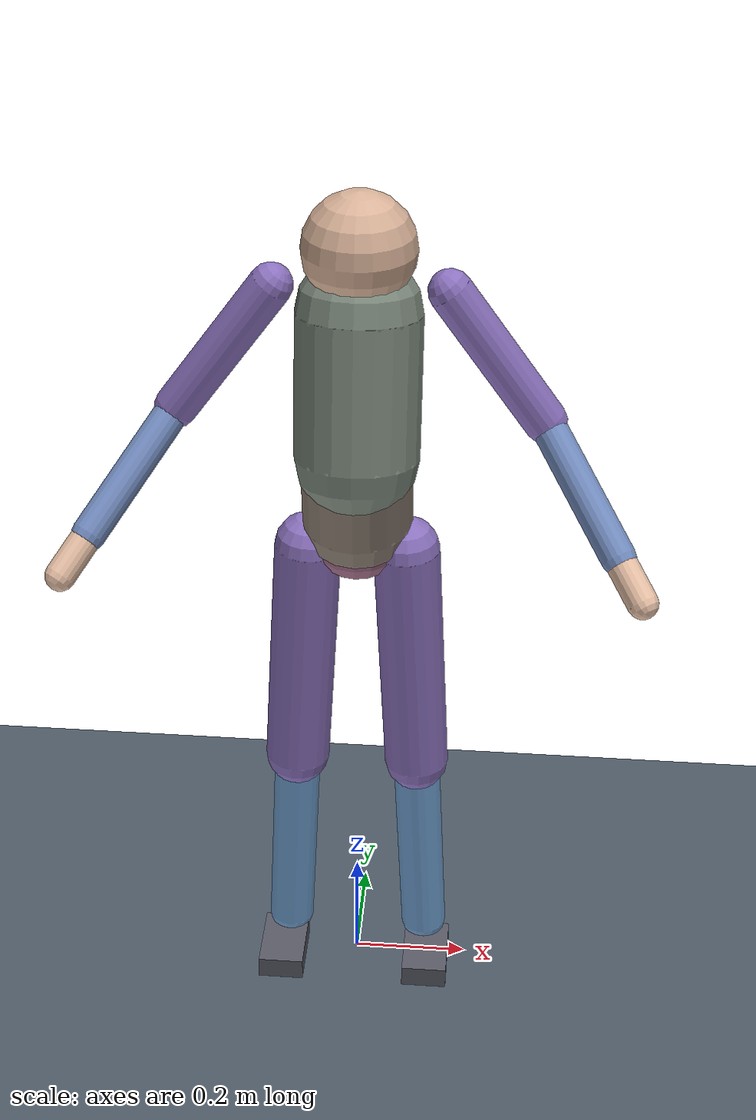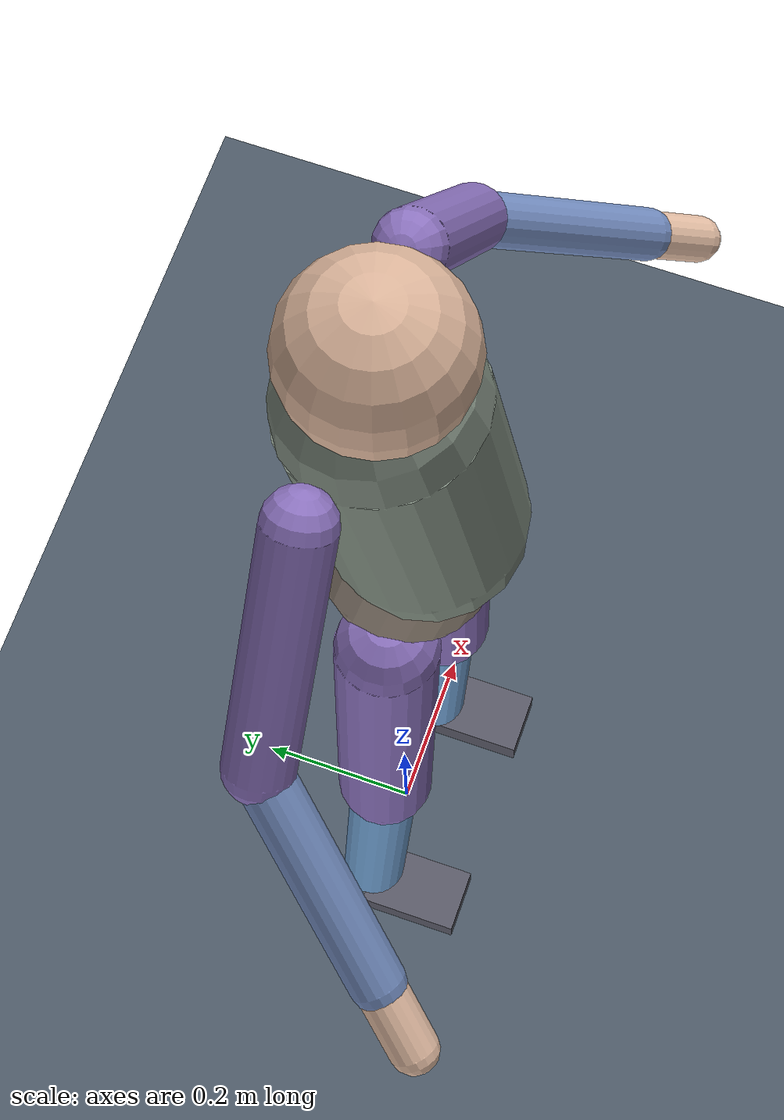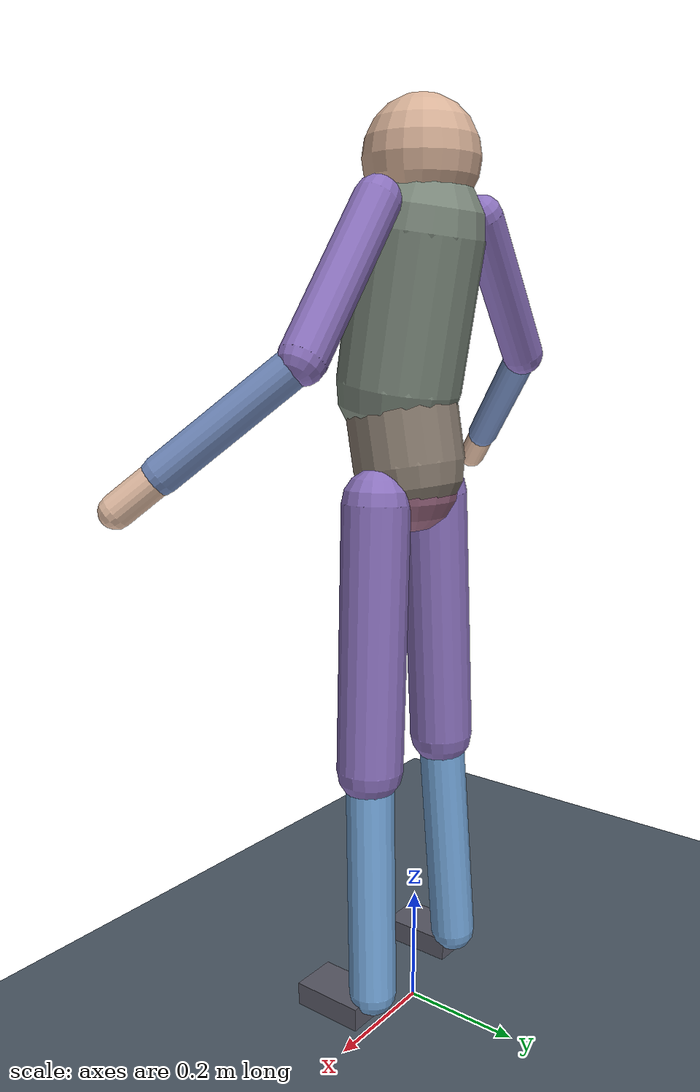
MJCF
<mujoco model="humanoid_alpha">
  <compiler angle="radian" coordinate="local" inertiafromgeom="true"/>
  <option timestep="0.002" gravity="0 0 -9.81" integrator="implicitfast"
          cone="elliptic" impratio="1"/>

  <default>
    <!-- solreflimit/solimplimit: stiff soft joint limits (ENGINEERING).
         Ball limited=true uses isotropic cone about rest (MuJoCo fact). -->
    <joint damping="0.08" armature="0.002"
           solreflimit="0.002 1" solimplimit="0.95 0.99 0.001" margin="0.02"/>
    <geom condim="3" friction="0.8 0.1 0.1"
          rgba="0.7 0.55 0.45 1" solref="0.02 1" solimp="0.9 0.95 0.001"/>
    <motor ctrllimited="true"/>
  </default>

  <asset>
    <texture name="grid" type="2d" builtin="checker" rgb1="0.2 0.3 0.4" rgb2="0.3 0.4 0.5"
             width="512" height="512"/>
    <material name="grid" texture="grid" texrepeat="4 4" reflectance="0.1"/>
  </asset>

  <worldbody>
    <geom name="floor" type="plane" size="5 5 0.1" rgba="0.3 0.35 0.4 1"
          friction="0.8 0.1 0.1"
          condim="3" material="grid"/>
    <light name="top" pos="0 0 3" dir="0 0 -1"/>

    <!-- PELVIS free root -->
    <body name="pelvis" pos="-0.00000000 -0.01795729 0.92590946">
      <freejoint name="root"/>
      <geom name="pelvis_geom" type="capsule" fromto="0 0 0 0.00000000 -0.00171871 0.02588642"
            size="0.08" density="4327.472052"
            rgba="0.6 0.4 0.5 1"/>
      <site name="pelvis_site" pos="0 0 0" size="0.02"/>

      <!-- TORSO LOWER (lumbar ball) -->
      <body name="torso_lower" pos="0.00000000 -0.00171871 0.02588642">
        <joint name="lumbar" type="ball" limited="true" range="0 0.6981317007977318" damping="0.08" armature="0.002"/>
        <geom name="torso_lower_geom" type="capsule" fromto="0 0 0 -0.00000000 -0.02211192 0.12414080"
              size="0.09" density="2247.388279"
              rgba="0.55 0.5 0.45 1"/>

        <!-- TORSO UPPER (thoracic ball); clavicles WELDED here -->
        <body name="torso_upper" pos="-0.00000000 -0.02211192 0.12414080">
          <joint name="thoracic" type="ball" limited="true" range="0 0.4363323129985824" damping="0.08" armature="0.002"/>
          <geom name="torso_upper_geom" type="capsule" fromto="0 0 0 0.00000000 0.03915559 0.23048341"
                size="0.1" density="2091.423647"
                rgba="0.5 0.55 0.5 1"/>

          <!-- HEAD (neck ball) -->
          <body name="head" pos="0.00000000 0.03915559 0.23048341">
            <joint name="neck" type="ball" limited="true" range="0 1.0471975511965976" damping="0.08" armature="0.002"/>
            <geom name="head_geom" type="sphere" pos="0.00000000 0.00051436 0.10423660"
                  size="0.09" density="1401.209880"
                  rgba="0.85 0.7 0.6 1"/>
          </body>

          <!-- LEFT ARM (shoulder at upperarm; clavicle welded) -->
          <body name="upperarm_l" pos="0.13750337 0.06080558 0.26143622">
            <joint name="shoulder_l" type="ball" limited="true" range="0 2.6179938779914944" damping="0.08" armature="0.002"/>
            <geom name="upperarm_l_geom" type="capsule" fromto="0 0 0 0.15628196 -0.00517103 -0.21397173"
                  size="0.035" density="1967.573737"
                  rgba="0.55 0.45 0.75 1"/>
            <body name="lowerarm_l" pos="0.15628196 -0.00517103 -0.21397173">
              <joint name="elbow_l" type="hinge" axis="-0.80688769 -0.05682603 -0.58796513"
                     range="0.0 2.6179938779914944"
                     limited="true" damping="0.08" armature="0.002"/>
              <geom name="lowerarm_l_geom" type="capsule" fromto="0 0 0 0.12206694 -0.15186871 -0.15283889"
                    size="0.028" density="1854.313102"
                    rgba="0.45 0.55 0.75 1"/>
              <body name="hand_l" pos="0.12206694 -0.15186871 -0.15283889">
                <joint name="wrist_l_flex" type="hinge" axis="-0.57300210 -0.77081943 0.27839905"
                       range="-1.2217304763960306 1.2217304763960306"
                       limited="true" damping="0.08" armature="0.002"/>
                <joint name="wrist_l_dev" type="hinge" axis="0.38407707 -0.55264789 -0.73963851"
                       range="-0.4363323129985824 0.6108652381980153"
                       limited="true" damping="0.08" armature="0.002"/>
                <geom name="hand_l_geom" type="capsule" fromto="0 0 0 0.03943413 -0.04906169 -0.04937510"
                      size="0.025" density="3153.534476"
                      rgba="0.9 0.75 0.65 1"/>
              </body>
            </body>
          </body>

          <!-- RIGHT ARM -->
          <body name="upperarm_r" pos="-0.13750440 0.06080503 0.26143265">
            <joint name="shoulder_r" type="ball" limited="true" range="0 2.6179938779914944" damping="0.08" armature="0.002"/>
            <geom name="upperarm_r_geom" type="capsule" fromto="0 0 0 -0.15628102 -0.00517101 -0.21397090"
                  size="0.035" density="1967.583726"
                  rgba="0.55 0.45 0.75 1"/>
            <body name="lowerarm_r" pos="-0.15628102 -0.00517101 -0.21397090">
              <joint name="elbow_r" type="hinge" axis="-0.80688691 0.05681980 0.58796686"
                     range="0.0 2.6179938779914944"
                     limited="true" damping="0.08" armature="0.002"/>
              <geom name="lowerarm_r_geom" type="capsule" fromto="0 0 0 -0.12206578 -0.15186719 -0.15283740"
                    size="0.028" density="1854.332747"
                    rgba="0.45 0.55 0.75 1"/>
              <body name="hand_r" pos="-0.12206578 -0.15186719 -0.15283740">
                <joint name="wrist_r_flex" type="hinge" axis="-0.57299960 0.77081847 -0.27840671"
                       range="-1.2217304763960306 1.2217304763960306"
                       limited="true" damping="0.08" armature="0.002"/>
                <joint name="wrist_r_dev" type="hinge" axis="0.38406542 0.55265504 0.73963916"
                       range="-0.4363323129985824 0.6108652381980153"
                       limited="true" damping="0.08" armature="0.002"/>
                <geom name="hand_r_geom" type="capsule" fromto="0 0 0 -0.03943414 -0.04906167 -0.04937510"
                      size="0.025" density="3153.534476"
                      rgba="0.9 0.75 0.65 1"/>
              </body>
            </body>
          </body>
        </body>
      </body>

      <!-- LEFT LEG -->
      <body name="thigh_l" pos="0.08068123 -0.00746380 -0.02524692">
        <joint name="hip_l" type="ball" limited="true" range="0 2.0943951023931953" damping="0.08" armature="0.002"/>
        <geom name="thigh_l_geom" type="capsule" fromto="0 0 0 0.02357826 0.00623232 -0.43413386"
              size="0.055" density="1727.367617"
              rgba="0.55 0.45 0.75 1"/>
        <body name="calf_l" pos="0.02357826 0.00623232 -0.43413386">
          <joint name="knee_l" type="hinge" axis="0.98767507 0.14625636 0.05574090"
                 range="-0.08726646259971647 2.443460952792061"
                 limited="true" damping="0.08" armature="0.002"/>
          <geom name="calf_l_geom" type="capsule" fromto="0 0 0 0.01905943 0.02069653 -0.39201690"
                size="0.04" density="1650.385099"
                rgba="0.45 0.65 0.85 1"/>
          <body name="foot_l" pos="0.01905943 0.02069653 -0.39201690">
            <joint name="ankle_l_dp" type="hinge" axis="0.98897082 0.14811058 0.00002446"
                   range="-0.3490658503988659 0.8726646259971648"
                   limited="true" damping="0.08" armature="0.002"/>
            <joint name="ankle_l_ie" type="hinge" axis="0.13235348 -0.88368259 -0.44898511"
                   range="-0.3490658503988659 0.3490658503988659"
                   limited="true" damping="0.08" armature="0.002"/>
            <geom name="foot_l_geom" type="box"
                  pos="0.00764331 -0.06284077 -0.03179681"
                  size="0.04000000 0.06284077 0.02000000"
                  density="2754.604533"
                  rgba="0.35 0.35 0.4 1"/>
          </body>
        </body>
      </body>

      <!-- RIGHT LEG -->
      <body name="thigh_r" pos="-0.08068430 -0.00743701 -0.02524543">
        <joint name="hip_r" type="ball" limited="true" range="0 2.0943951023931953" damping="0.08" armature="0.002"/>
        <geom name="thigh_r_geom" type="capsule" fromto="0 0 0 -0.02357824 0.00623231 -0.43413320"
              size="0.055" density="1727.370522"
              rgba="0.55 0.45 0.75 1"/>
        <body name="calf_r" pos="-0.02357824 0.00623231 -0.43413320">
          <joint name="knee_r" type="hinge" axis="0.98767519 -0.14625715 -0.05573623"
                 range="-0.08726646259971647 2.443460952792061"
                 limited="true" damping="0.08" armature="0.002"/>
          <geom name="calf_r_geom" type="capsule" fromto="0 0 0 -0.01905945 0.02069654 -0.39201725"
                size="0.04" density="1650.383470"
                rgba="0.45 0.65 0.85 1"/>
          <body name="foot_r" pos="-0.01905945 0.02069654 -0.39201725">
            <joint name="ankle_r_dp" type="hinge" axis="0.98897076 -0.14811094 -0.00003114"
                   range="-0.3490658503988659 0.8726646259971648"
                   limited="true" damping="0.08" armature="0.002"/>
            <joint name="ankle_r_ie" type="hinge" axis="-0.13235675 -0.88368199 -0.44898534"
                   range="-0.3490658503988659 0.3490658503988659"
                   limited="true" damping="0.08" armature="0.002"/>
            <geom name="foot_r_geom" type="box"
                  pos="-0.00764350 -0.06284065 -0.03179680"
                  size="0.04000000 0.06284065 0.02000000"
                  density="2754.608663"
                  rgba="0.35 0.35 0.4 1"/>
          </body>
        </body>
      </body>
    </body>
  </worldbody>

  <contact>
    <exclude body1="pelvis" body2="torso_upper"/>
    <exclude body1="torso_lower" body2="thigh_l"/>
    <exclude body1="torso_lower" body2="thigh_r"/>
    <exclude body1="pelvis" body2="upperarm_l"/>
    <exclude body1="pelvis" body2="upperarm_r"/>
    <exclude body1="torso_lower" body2="upperarm_l"/>
    <exclude body1="torso_lower" body2="upperarm_r"/>
    <exclude body1="torso_upper" body2="thigh_l"/>
    <exclude body1="torso_upper" body2="thigh_r"/>
    <exclude body1="head" body2="torso_lower"/>
    <exclude body1="head" body2="pelvis"/>
  </contact>

  <actuator>
    <motor name="lumbar_x_motor" joint="lumbar" gear="1 0 0" ctrllimited="true" ctrlrange="-35.0 35.0"/>
    <motor name="lumbar_y_motor" joint="lumbar" gear="0 1 0" ctrllimited="true" ctrlrange="-35.0 35.0"/>
    <motor name="lumbar_z_motor" joint="lumbar" gear="0 0 1" ctrllimited="true" ctrlrange="-35.0 35.0"/>
    <motor name="thoracic_x_motor" joint="thoracic" gear="1 0 0" ctrllimited="true" ctrlrange="-30.0 30.0"/>
    <motor name="thoracic_y_motor" joint="thoracic" gear="0 1 0" ctrllimited="true" ctrlrange="-30.0 30.0"/>
    <motor name="thoracic_z_motor" joint="thoracic" gear="0 0 1" ctrllimited="true" ctrlrange="-30.0 30.0"/>
    <motor name="neck_x_motor" joint="neck" gear="1 0 0" ctrllimited="true" ctrlrange="-20.0 20.0"/>
    <motor name="neck_y_motor" joint="neck" gear="0 1 0" ctrllimited="true" ctrlrange="-20.0 20.0"/>
    <motor name="neck_z_motor" joint="neck" gear="0 0 1" ctrllimited="true" ctrlrange="-20.0 20.0"/>
    <motor name="hip_l_x_motor" joint="hip_l" gear="1 0 0" ctrllimited="true" ctrlrange="-120.0 120.0"/>
    <motor name="hip_l_y_motor" joint="hip_l" gear="0 1 0" ctrllimited="true" ctrlrange="-120.0 120.0"/>
    <motor name="hip_l_z_motor" joint="hip_l" gear="0 0 1" ctrllimited="true" ctrlrange="-120.0 120.0"/>
    <motor name="hip_r_x_motor" joint="hip_r" gear="1 0 0" ctrllimited="true" ctrlrange="-120.0 120.0"/>
    <motor name="hip_r_y_motor" joint="hip_r" gear="0 1 0" ctrllimited="true" ctrlrange="-120.0 120.0"/>
    <motor name="hip_r_z_motor" joint="hip_r" gear="0 0 1" ctrllimited="true" ctrlrange="-120.0 120.0"/>
    <motor name="shoulder_l_x_motor" joint="shoulder_l" gear="1 0 0" ctrllimited="true" ctrlrange="-60.0 60.0"/>
    <motor name="shoulder_l_y_motor" joint="shoulder_l" gear="0 1 0" ctrllimited="true" ctrlrange="-60.0 60.0"/>
    <motor name="shoulder_l_z_motor" joint="shoulder_l" gear="0 0 1" ctrllimited="true" ctrlrange="-60.0 60.0"/>
    <motor name="shoulder_r_x_motor" joint="shoulder_r" gear="1 0 0" ctrllimited="true" ctrlrange="-60.0 60.0"/>
    <motor name="shoulder_r_y_motor" joint="shoulder_r" gear="0 1 0" ctrllimited="true" ctrlrange="-60.0 60.0"/>
    <motor name="shoulder_r_z_motor" joint="shoulder_r" gear="0 0 1" ctrllimited="true" ctrlrange="-60.0 60.0"/>
    <motor name="knee_l_motor" joint="knee_l" gear="1" ctrllimited="true" ctrlrange="-100.0 100.0"/>
    <motor name="knee_r_motor" joint="knee_r" gear="1" ctrllimited="true" ctrlrange="-100.0 100.0"/>
    <motor name="elbow_l_motor" joint="elbow_l" gear="1" ctrllimited="true" ctrlrange="-40.0 40.0"/>
    <motor name="elbow_r_motor" joint="elbow_r" gear="1" ctrllimited="true" ctrlrange="-40.0 40.0"/>
    <motor name="ankle_l_dp_motor" joint="ankle_l_dp" gear="1" ctrllimited="true" ctrlrange="-40.0 40.0"/>
    <motor name="ankle_l_ie_motor" joint="ankle_l_ie" gear="1" ctrllimited="true" ctrlrange="-40.0 40.0"/>
    <motor name="ankle_r_dp_motor" joint="ankle_r_dp" gear="1" ctrllimited="true" ctrlrange="-40.0 40.0"/>
    <motor name="ankle_r_ie_motor" joint="ankle_r_ie" gear="1" ctrllimited="true" ctrlrange="-40.0 40.0"/>
    <motor name="wrist_l_flex_motor" joint="wrist_l_flex" gear="1" ctrllimited="true" ctrlrange="-10.0 10.0"/>
    <motor name="wrist_l_dev_motor" joint="wrist_l_dev" gear="1" ctrllimited="true" ctrlrange="-10.0 10.0"/>
    <motor name="wrist_r_flex_motor" joint="wrist_r_flex" gear="1" ctrllimited="true" ctrlrange="-10.0 10.0"/>
    <motor name="wrist_r_dev_motor" joint="wrist_r_dev" gear="1" ctrllimited="true" ctrlrange="-10.0 10.0"/>
  </actuator>
</mujoco>
